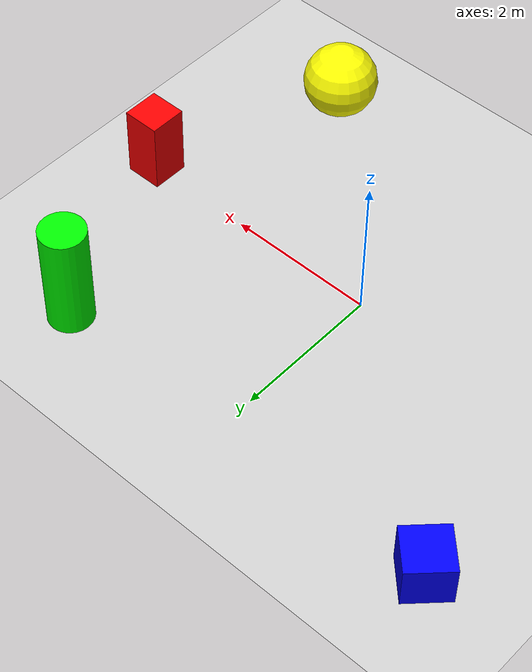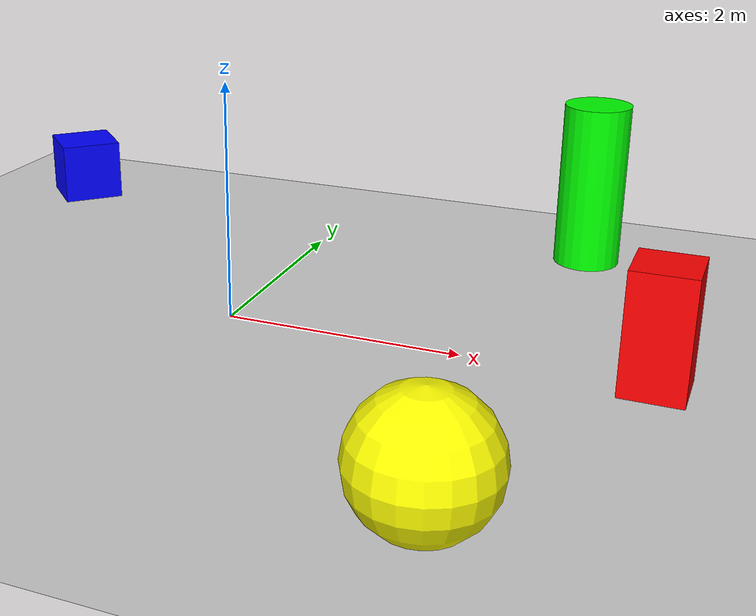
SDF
<?xml version="1.0"?>
<sdf version="1.6">
  <world name="hw2_world">

    <!-- Physics -->
    <physics type="ode">
      <max_step_size>0.001</max_step_size>
      <real_time_factor>1</real_time_factor>
      <real_time_update_rate>1000</real_time_update_rate>
    </physics>

    <!-- Ground Plane -->
    <include>
      <uri>model://ground_plane</uri>
    </include>

    <!-- Sun (lighting) -->
    <include>
      <uri>model://sun</uri>
    </include>

    <!-- Red Box (Obstacle 1) - Far ahead -->
    <model name="red_box">
      <pose>3.5 0 0.5 0 0 0</pose>
      <static>true</static>
      <link name="link">
        <visual name="visual">
          <geometry>
            <box>
              <size>0.5 0.5 1.0</size>
            </box>
          </geometry>
          <material>
            <ambient>1 0 0 1</ambient>
            <diffuse>1 0 0 1</diffuse>
          </material>
        </visual>
      </link>
    </model>

    <!-- Green Cylinder (Obstacle 2) - Front left, visible -->
    <model name="green_cylinder">
      <pose>2.5 2.5 0.75 0 0 0</pose>
      <static>true</static>
      <link name="link">
        <visual name="visual">
          <geometry>
            <cylinder>
              <radius>0.3</radius>
              <length>1.5</length>
            </cylinder>
          </geometry>
          <material>
            <ambient>0 1 0 1</ambient>
            <diffuse>0 1 0 1</diffuse>
          </material>
        </visual>
      </link>
    </model>

    <!-- Blue Box (Obstacle 3) - Back left -->
    <model name="blue_box">
      <pose>-3 2.5 0.3 0 0 0.785</pose>
      <static>true</static>
      <link name="link">
        <visual name="visual">
          <geometry>
            <box>
              <size>0.6 0.6 0.6</size>
            </box>
          </geometry>
          <material>
            <ambient>0 0 1 1</ambient>
            <diffuse>0 0 1 1</diffuse>
          </material>
        </visual>
      </link>
    </model>

    <!-- Yellow Sphere (Obstacle 4) - Front right -->
    <model name="yellow_sphere">
      <pose>2.5 -2.5 0.5 0 0 0</pose>
      <static>true</static>
      <link name="link">
        <visual name="visual">
          <geometry>
            <sphere>
              <radius>0.5</radius>
            </sphere>
          </geometry>
          <material>
            <ambient>1 1 0 1</ambient>
            <diffuse>1 1 0 1</diffuse>
          </material>
        </visual>
      </link>
    </model>

  </world>
</sdf>
